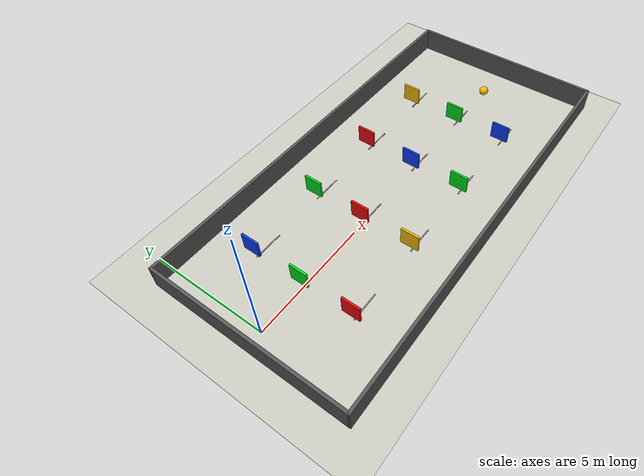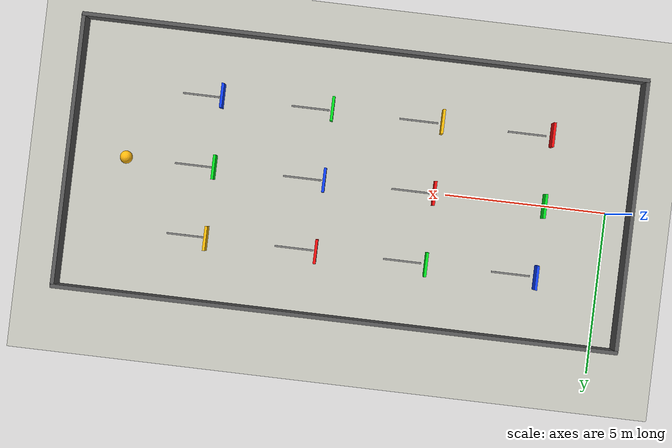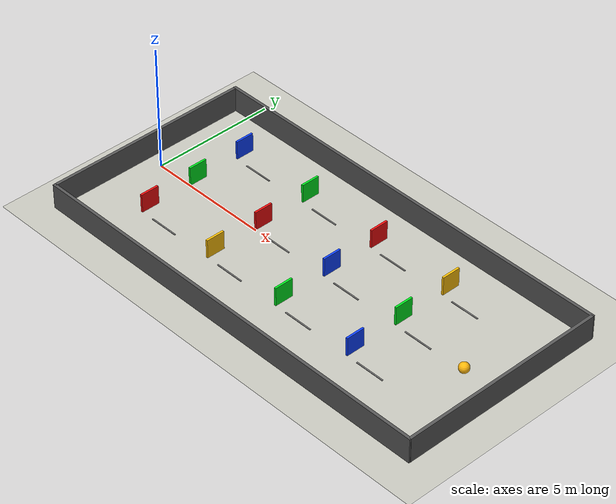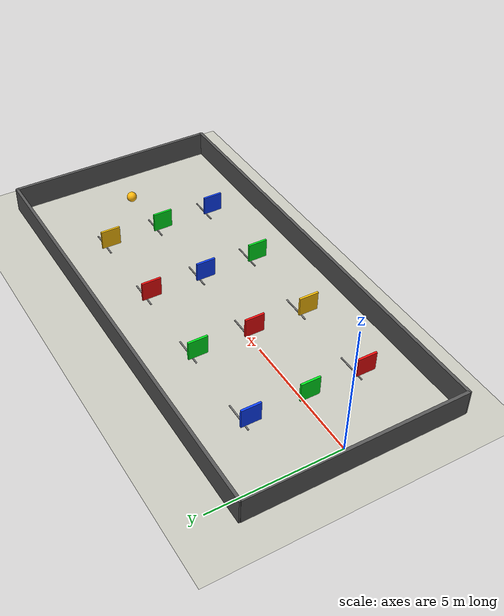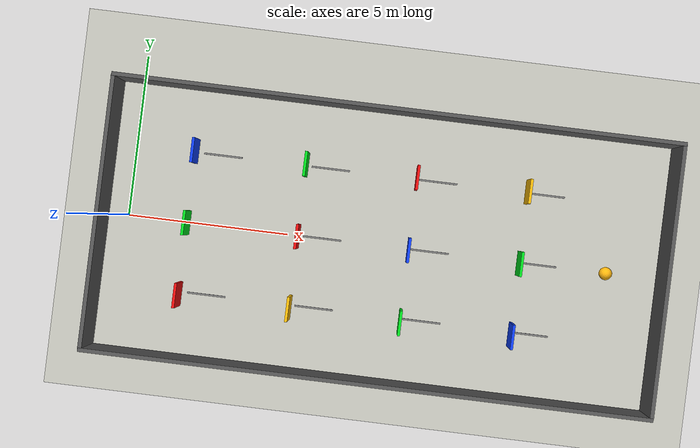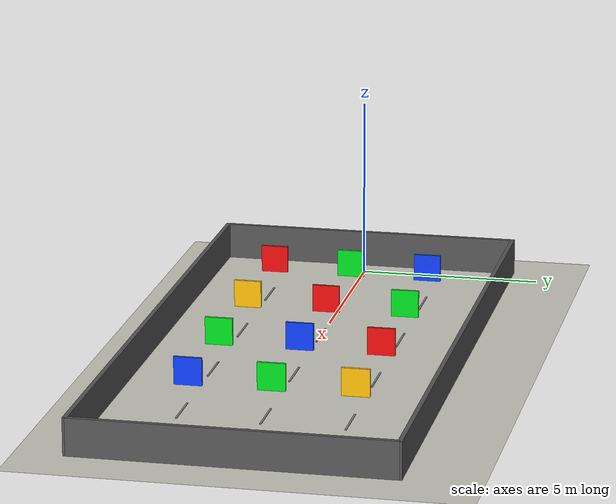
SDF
<sdf version="1.10">
  <world name="branching_path_markers">
    <plugin filename="gz-sim-physics-system" name="gz::sim::systems::Physics"/>
    <plugin filename="gz-sim-user-commands-system" name="gz::sim::systems::UserCommands"/>
    <plugin filename="gz-sim-scene-broadcaster-system" name="gz::sim::systems::SceneBroadcaster"/>
    <plugin filename="gz-sim8-sensors-system" name="gz::sim::systems::Sensors">
      <render_engine>ogre2</render_engine>
    </plugin>
    <plugin filename="gz-sim8-imu-system" name="gz::sim::systems::Imu"/>

    <gravity>0 0 -9.81</gravity>

    <light name="sun" type="directional">
      <pose>8 0 10 0 0 0</pose>
      <diffuse>0.9 0.9 0.86 1</diffuse>
      <specular>0.2 0.2 0.2 1</specular>
      <direction>-0.6 0.25 -0.75</direction>
    </light>

    <model name="ground_plane">
      <static>true</static>
      <link name="link">
        <collision name="collision">
          <geometry>
            <plane>
              <normal>0 0 1</normal>
              <size>24 12</size>
            </plane>
          </geometry>
        </collision>
        <visual name="visual">
          <geometry>
            <plane>
              <normal>0 0 1</normal>
              <size>24 12</size>
            </plane>
          </geometry>
          <material>
            <ambient>0.78 0.78 0.74 1</ambient>
            <diffuse>0.78 0.78 0.74 1</diffuse>
          </material>
        </visual>
      </link>
    </model>

    <model name="outer_walls">
      <static>true</static>
      <link name="north_wall">
        <pose>8.0 4.2 0.5 0 0 0</pose>
        <collision name="collision"><geometry><box><size>17.5 0.12 1.0</size></box></geometry></collision>
        <visual name="visual"><geometry><box><size>17.5 0.12 1.0</size></box></geometry><material><ambient>0.34 0.34 0.34 1</ambient><diffuse>0.34 0.34 0.34 1</diffuse></material></visual>
      </link>
      <link name="south_wall">
        <pose>8.0 -4.2 0.5 0 0 0</pose>
        <collision name="collision"><geometry><box><size>17.5 0.12 1.0</size></box></geometry></collision>
        <visual name="visual"><geometry><box><size>17.5 0.12 1.0</size></box></geometry><material><ambient>0.34 0.34 0.34 1</ambient><diffuse>0.34 0.34 0.34 1</diffuse></material></visual>
      </link>
      <link name="west_wall">
        <pose>-0.7 0 0.5 0 0 0</pose>
        <collision name="collision"><geometry><box><size>0.12 8.4 1.0</size></box></geometry></collision>
        <visual name="visual"><geometry><box><size>0.12 8.4 1.0</size></box></geometry><material><ambient>0.34 0.34 0.34 1</ambient><diffuse>0.34 0.34 0.34 1</diffuse></material></visual>
      </link>
      <link name="east_wall">
        <pose>16.7 0 0.5 0 0 0</pose>
        <collision name="collision"><geometry><box><size>0.12 8.4 1.0</size></box></geometry></collision>
        <visual name="visual"><geometry><box><size>0.12 8.4 1.0</size></box></geometry><material><ambient>0.34 0.34 0.34 1</ambient><diffuse>0.34 0.34 0.34 1</diffuse></material></visual>
      </link>
    </model>

    <model name="non_blocking_lane_guides">
      <static>true</static>
      <link name="start_center_line">
        <pose>1.0 0 0.012 0 0 0</pose>
        <visual name="visual"><geometry><box><size>1.4 0.05 0.02</size></box></geometry><material><ambient>0.55 0.55 0.55 1</ambient><diffuse>0.55 0.55 0.55 1</diffuse></material></visual>
      </link>
      <link name="decision_1_left_lane_hint">
        <pose>2.7 2.2 0.012 0 0 0</pose>
        <visual name="visual"><geometry><box><size>1.2 0.05 0.02</size></box></geometry><material><ambient>0.5 0.5 0.5 1</ambient><diffuse>0.5 0.5 0.5 1</diffuse></material></visual>
      </link>
      <link name="decision_1_straight_lane_hint">
        <pose>2.7 0 0.012 0 0 0</pose>
        <visual name="visual"><geometry><box><size>1.2 0.05 0.02</size></box></geometry><material><ambient>0.5 0.5 0.5 1</ambient><diffuse>0.5 0.5 0.5 1</diffuse></material></visual>
      </link>
      <link name="decision_1_right_lane_hint">
        <pose>2.7 -2.2 0.012 0 0 0</pose>
        <visual name="visual"><geometry><box><size>1.2 0.05 0.02</size></box></geometry><material><ambient>0.5 0.5 0.5 1</ambient><diffuse>0.5 0.5 0.5 1</diffuse></material></visual>
      </link>
      <link name="decision_2_left_lane_hint">
        <pose>6.1 2.2 0.012 0 0 0</pose>
        <visual name="visual"><geometry><box><size>1.2 0.05 0.02</size></box></geometry><material><ambient>0.5 0.5 0.5 1</ambient><diffuse>0.5 0.5 0.5 1</diffuse></material></visual>
      </link>
      <link name="decision_2_straight_lane_hint">
        <pose>6.1 0 0.012 0 0 0</pose>
        <visual name="visual"><geometry><box><size>1.2 0.05 0.02</size></box></geometry><material><ambient>0.5 0.5 0.5 1</ambient><diffuse>0.5 0.5 0.5 1</diffuse></material></visual>
      </link>
      <link name="decision_2_right_lane_hint">
        <pose>6.1 -2.2 0.012 0 0 0</pose>
        <visual name="visual"><geometry><box><size>1.2 0.05 0.02</size></box></geometry><material><ambient>0.5 0.5 0.5 1</ambient><diffuse>0.5 0.5 0.5 1</diffuse></material></visual>
      </link>
      <link name="decision_3_left_lane_hint">
        <pose>9.5 2.2 0.012 0 0 0</pose>
        <visual name="visual"><geometry><box><size>1.2 0.05 0.02</size></box></geometry><material><ambient>0.5 0.5 0.5 1</ambient><diffuse>0.5 0.5 0.5 1</diffuse></material></visual>
      </link>
      <link name="decision_3_straight_lane_hint">
        <pose>9.5 0 0.012 0 0 0</pose>
        <visual name="visual"><geometry><box><size>1.2 0.05 0.02</size></box></geometry><material><ambient>0.5 0.5 0.5 1</ambient><diffuse>0.5 0.5 0.5 1</diffuse></material></visual>
      </link>
      <link name="decision_3_right_lane_hint">
        <pose>9.5 -2.2 0.012 0 0 0</pose>
        <visual name="visual"><geometry><box><size>1.2 0.05 0.02</size></box></geometry><material><ambient>0.5 0.5 0.5 1</ambient><diffuse>0.5 0.5 0.5 1</diffuse></material></visual>
      </link>
      <link name="decision_4_left_lane_hint">
        <pose>12.9 2.2 0.012 0 0 0</pose>
        <visual name="visual"><geometry><box><size>1.2 0.05 0.02</size></box></geometry><material><ambient>0.5 0.5 0.5 1</ambient><diffuse>0.5 0.5 0.5 1</diffuse></material></visual>
      </link>
      <link name="decision_4_straight_lane_hint">
        <pose>12.9 0 0.012 0 0 0</pose>
        <visual name="visual"><geometry><box><size>1.2 0.05 0.02</size></box></geometry><material><ambient>0.5 0.5 0.5 1</ambient><diffuse>0.5 0.5 0.5 1</diffuse></material></visual>
      </link>
      <link name="decision_4_right_lane_hint">
        <pose>12.9 -2.2 0.012 0 0 0</pose>
        <visual name="visual"><geometry><box><size>1.2 0.05 0.02</size></box></geometry><material><ambient>0.5 0.5 0.5 1</ambient><diffuse>0.5 0.5 0.5 1</diffuse></material></visual>
      </link>
    </model>

    <model name="decision_markers">
      <static>true</static>
      <link name="decision_1_left_blue_panel">
        <pose>2.0 2.2 0.85 0 0 0</pose>
        <visual name="visual"><geometry><box><size>0.08 0.75 0.75</size></box></geometry><material><ambient>0.05 0.25 1.0 1</ambient><diffuse>0.05 0.25 1.0 1</diffuse></material></visual>
      </link>
      <link name="decision_1_straight_green_panel">
        <pose>2.0 0 0.85 0 0 0</pose>
        <visual name="visual"><geometry><box><size>0.08 0.75 0.75</size></box></geometry><material><ambient>0.0 0.9 0.12 1</ambient><diffuse>0.0 0.9 0.12 1</diffuse></material></visual>
      </link>
      <link name="decision_1_right_red_panel">
        <pose>2.0 -2.2 0.85 0 0 0</pose>
        <visual name="visual"><geometry><box><size>0.08 0.75 0.75</size></box></geometry><material><ambient>0.95 0.05 0.05 1</ambient><diffuse>0.95 0.05 0.05 1</diffuse></material></visual>
      </link>

      <link name="decision_2_left_green_panel">
        <pose>5.4 2.2 0.85 0 0 0</pose>
        <visual name="visual"><geometry><box><size>0.08 0.75 0.75</size></box></geometry><material><ambient>0.0 0.9 0.12 1</ambient><diffuse>0.0 0.9 0.12 1</diffuse></material></visual>
      </link>
      <link name="decision_2_straight_red_panel">
        <pose>5.4 0 0.85 0 0 0</pose>
        <visual name="visual"><geometry><box><size>0.08 0.75 0.75</size></box></geometry><material><ambient>0.95 0.05 0.05 1</ambient><diffuse>0.95 0.05 0.05 1</diffuse></material></visual>
      </link>
      <link name="decision_2_right_yellow_panel">
        <pose>5.4 -2.2 0.85 0 0 0</pose>
        <visual name="visual"><geometry><box><size>0.08 0.75 0.75</size></box></geometry><material><ambient>1.0 0.75 0.03 1</ambient><diffuse>1.0 0.75 0.03 1</diffuse></material></visual>
      </link>

      <link name="decision_3_left_red_panel">
        <pose>8.8 2.2 0.85 0 0 0</pose>
        <visual name="visual"><geometry><box><size>0.08 0.75 0.75</size></box></geometry><material><ambient>0.95 0.05 0.05 1</ambient><diffuse>0.95 0.05 0.05 1</diffuse></material></visual>
      </link>
      <link name="decision_3_straight_blue_panel">
        <pose>8.8 0 0.85 0 0 0</pose>
        <visual name="visual"><geometry><box><size>0.08 0.75 0.75</size></box></geometry><material><ambient>0.05 0.25 1.0 1</ambient><diffuse>0.05 0.25 1.0 1</diffuse></material></visual>
      </link>
      <link name="decision_3_right_green_panel">
        <pose>8.8 -2.2 0.85 0 0 0</pose>
        <visual name="visual"><geometry><box><size>0.08 0.75 0.75</size></box></geometry><material><ambient>0.0 0.9 0.12 1</ambient><diffuse>0.0 0.9 0.12 1</diffuse></material></visual>
      </link>

      <link name="decision_4_left_yellow_panel">
        <pose>12.2 2.2 0.85 0 0 0</pose>
        <visual name="visual"><geometry><box><size>0.08 0.75 0.75</size></box></geometry><material><ambient>1.0 0.75 0.03 1</ambient><diffuse>1.0 0.75 0.03 1</diffuse></material></visual>
      </link>
      <link name="decision_4_straight_green_panel">
        <pose>12.2 0 0.85 0 0 0</pose>
        <visual name="visual"><geometry><box><size>0.08 0.75 0.75</size></box></geometry><material><ambient>0.0 0.9 0.12 1</ambient><diffuse>0.0 0.9 0.12 1</diffuse></material></visual>
      </link>
      <link name="decision_4_right_blue_panel">
        <pose>12.2 -2.2 0.85 0 0 0</pose>
        <visual name="visual"><geometry><box><size>0.08 0.75 0.75</size></box></geometry><material><ambient>0.05 0.25 1.0 1</ambient><diffuse>0.05 0.25 1.0 1</diffuse></material></visual>
      </link>
    </model>

    <model name="goal_ball">
      <static>false</static>
      <pose>15.0 0 0.2 0 0 0</pose>
      <link name="link">
        <inertial>
          <mass>0.15</mass>
          <inertia>
            <ixx>0.0016</ixx>
            <iyy>0.0016</iyy>
            <izz>0.0016</izz>
            <ixy>0</ixy>
            <ixz>0</ixz>
            <iyz>0</iyz>
          </inertia>
        </inertial>
        <collision name="collision">
          <geometry><sphere><radius>0.2</radius></sphere></geometry>
        </collision>
        <visual name="visual">
          <geometry><sphere><radius>0.2</radius></sphere></geometry>
          <material><ambient>1.0 0.72 0.05 1</ambient><diffuse>1.0 0.72 0.05 1</diffuse></material>
        </visual>
      </link>
    </model>
  </world>
</sdf>
